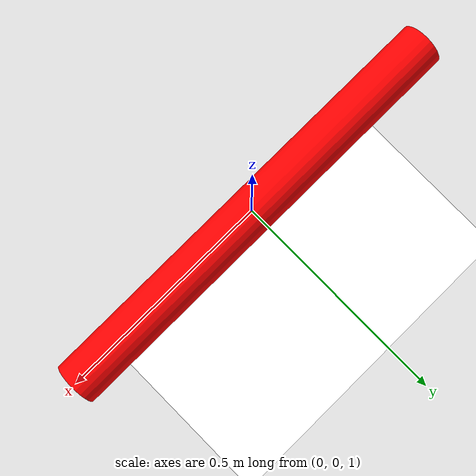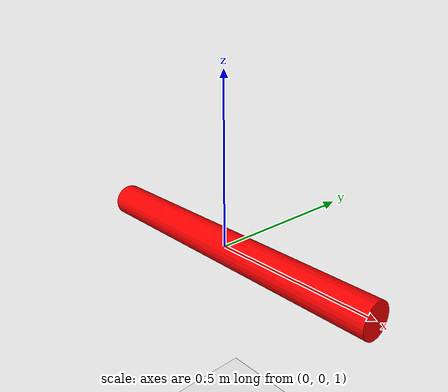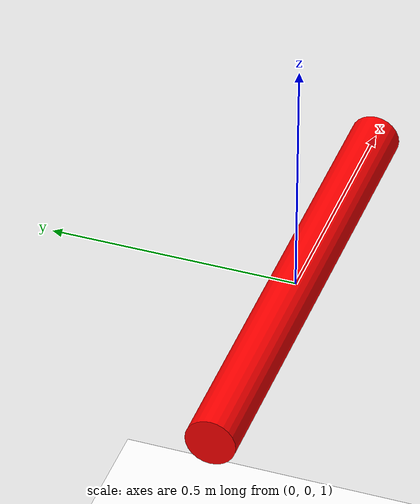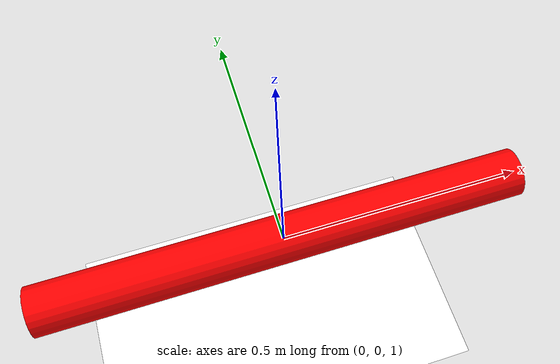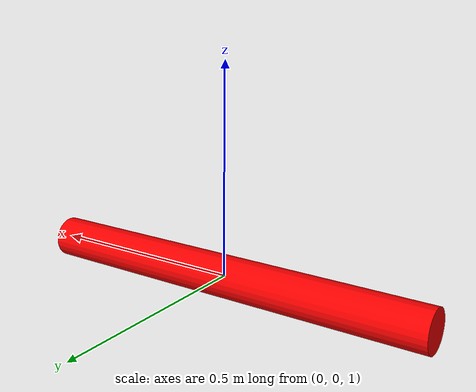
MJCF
<mujoco>
  <option gravity="0 0 0"/>
  <worldbody>
    <light diffuse=".5 .5 .5" pos="0 0 10" dir="0 0 -1"/>
    <geom type="plane" size="2 2 0.1" rgba="1 1 1 1"/>
    <body pos="0 0 1" euler="0 90 0">
      <joint type="free"/>
      <geom type="cylinder" size="0.05 0.5" rgba="1 0 0 1"/>
    </body>
  </worldbody>
</mujoco>
